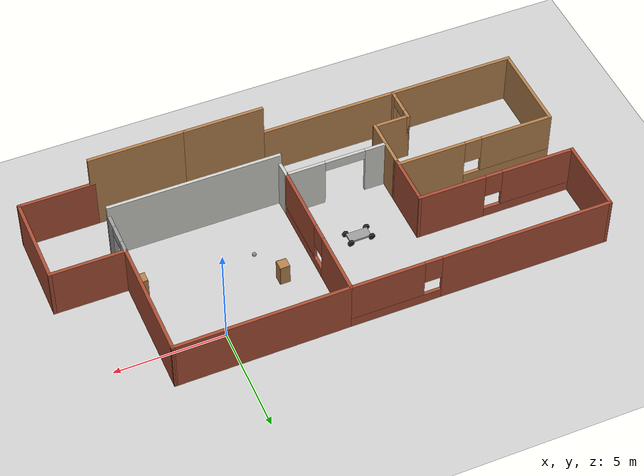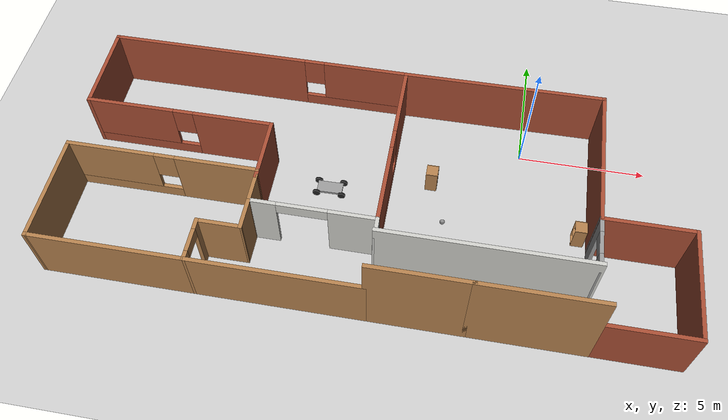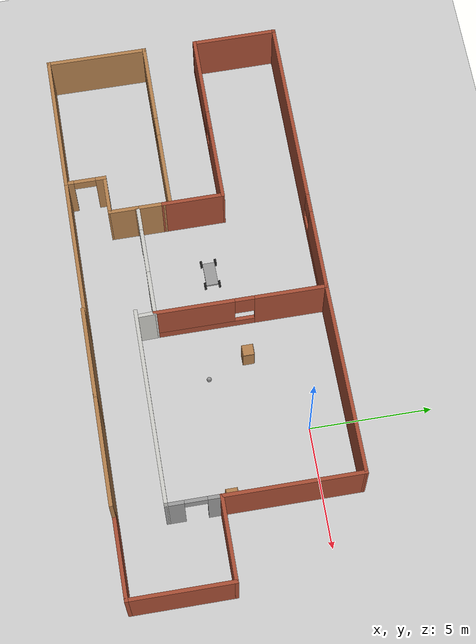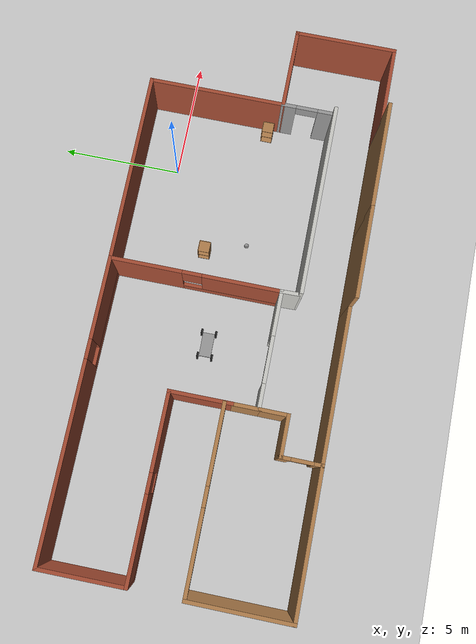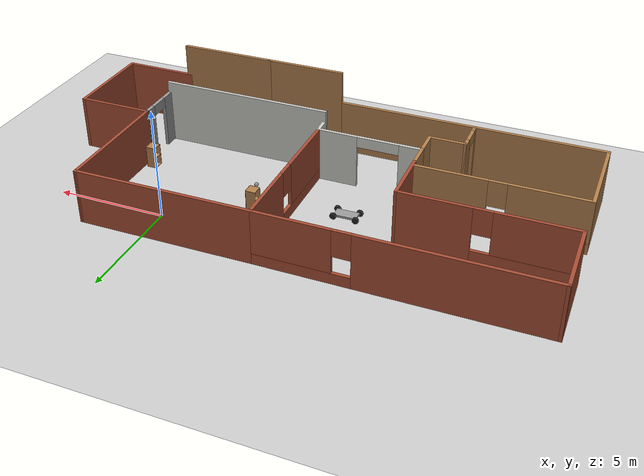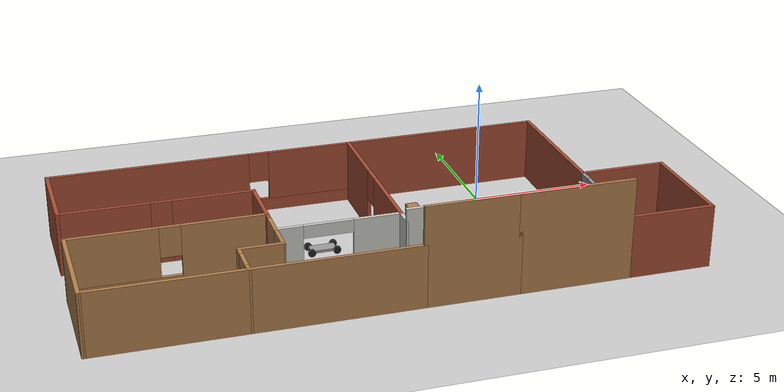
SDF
<sdf version="1.6">
 <world name="default">
  <plugin name="proj_1_plugin" filename="libproj_1_plugin.so"/>
  <light name="sun" type="directional">
   <pose>0 0 10 0 -0 0</pose>
   <diffuse>0.8 0.8 0.8 1</diffuse>
   <specular>0.2 0.2 0.2 1</specular>
   <attenuation>
    <range>1000</range>
    <constant>0.9</constant>
    <linear>0.01</linear>
    <quadratic>0.001</quadratic>
   </attenuation>
   <direction>-0.5 0.1 -0.9</direction>
   <spot><inner_angle>0</inner_angle><outer_angle>0</outer_angle><falloff>0</falloff></spot>
  </light>
  <model name="ground_plane">
   <static>1</static>
   <link name="link">
    <collision name="collision">
     <geometry><plane><normal>0 0 1</normal><size>100 100</size></plane></geometry>
     <surface>
      <contact><collide_bitmask>65535</collide_bitmask></contact>
      <friction><ode><mu>100</mu><mu2>50</mu2></ode></friction>
     </surface>
    </collision>
    <visual name="visual">
     <cast_shadows>0</cast_shadows>
     <geometry><plane><normal>0 0 1</normal><size>100 100</size></plane></geometry>
     <material>
      <script><uri>file://media/materials/scripts/gazebo.material</uri><name>Gazebo/Grey</name></script>
     </material>
    </visual>
   </link>
  </model>
  <gravity>0 0 -9.8</gravity>
  <magnetic_field>6e-06 2.3e-05 -4.2e-05</magnetic_field>
  <atmosphere type="adiabatic"/>
  <physics name="default_physics" default="0" type="ode">
   <max_step_size>0.001</max_step_size>
   <real_time_factor>1</real_time_factor>
   <real_time_update_rate>1000</real_time_update_rate>
  </physics>
  <scene><ambient>0.4 0.4 0.4 1</ambient><background>0.7 0.7 0.7 1</background><shadows>1</shadows></scene>
  <audio><device>default</device></audio>
  <spherical_coordinates>
   <surface_model>EARTH_WGS84</surface_model>
   <latitude_deg>0</latitude_deg>
   <longitude_deg>0</longitude_deg>
   <elevation>0</elevation>
   <heading_deg>0</heading_deg>
  </spherical_coordinates>
  <model name="robot_house_space">
   <pose>-5.45028 -3.2823 0 0 -0 0</pose>
   <link name="Wall_31">
    <collision name="Wall_31_Collision">
     <geometry><box><size>2.61436 0.15 2.5</size></box></geometry>
     <pose>0 0 1.25 0 -0 0</pose>
    </collision>
    <visual name="Wall_31_Visual">
     <pose>0 0 1.25 0 -0 0</pose>
     <geometry><box><size>2.61436 0.15 2.5</size></box></geometry>
     <material>
      <script><uri>file://media/materials/scripts/gazebo.material</uri><name>Gazebo/Bricks</name></script>
      <ambient>1 1 1 1</ambient>
     </material>
     <meta><layer>0</layer></meta>
    </visual>
    <pose>-4.28923 0.164965 0 0 -0 1.57401</pose>
   </link>
   <link name="Wall_32">
    <pose>-7.96819 1.397 0 0 -0 3.14159</pose>
    <visual name="Wall_32_Visual_0">
     <pose>-2.14641 0 1.25 0 -0 0</pose>
     <geometry><box><size>3.20718 0.15 2.5</size></box></geometry>
     <material>
      <script><uri>file://media/materials/scripts/gazebo.material</uri><name>Gazebo/Bricks</name></script>
      <ambient>1 1 1 1</ambient>
     </material>
     <meta><layer>0</layer></meta>
    </visual>
    <collision name="Wall_32_Collision_0">
     <geometry><box><size>3.20718 0.15 2.5</size></box></geometry>
     <pose>-2.14641 0 1.25 0 -0 0</pose>
    </collision>
    <visual name="Wall_32_Visual_1">
     <pose>1.60359 0 0.25 0 -0 0</pose>
     <geometry><box><size>4.29282 0.15 0.5</size></box></geometry>
     <material>
      <script><uri>file://media/materials/scripts/gazebo.material</uri><name>Gazebo/Bricks</name></script>
      <ambient>1 1 1 1</ambient>
     </material>
     <meta><layer>0</layer></meta>
    </visual>
    <collision name="Wall_32_Collision_1">
     <geometry><box><size>4.29282 0.15 0.5</size></box></geometry>
     <pose>1.60359 0 0.25 0 -0 0</pose>
    </collision>
    <visual name="Wall_32_Visual_2">
     <pose>2.00359 0 1.5 0 -0 0</pose>
     <geometry><box><size>3.49282 0.15 2</size></box></geometry>
     <material>
      <script><uri>file://media/materials/scripts/gazebo.material</uri><name>Gazebo/Bricks</name></script>
      <ambient>1 1 1 1</ambient>
     </material>
     <meta><layer>0</layer></meta>
    </visual>
    <collision name="Wall_32_Collision_2">
     <geometry><box><size>3.49282 0.15 2</size></box></geometry>
     <pose>2.00359 0 1.5 0 -0 0</pose>
    </collision>
    <visual name="Wall_32_Visual_3">
     <pose>-0.142822 0 1.9 0 -0 0</pose>
     <geometry><box><size>0.8 0.15 1.2</size></box></geometry>
     <material>
      <script><uri>file://media/materials/scripts/gazebo.material</uri><name>Gazebo/Bricks</name></script>
      <ambient>1 1 1 1</ambient>
     </material>
     <meta><layer>0</layer></meta>
    </visual>
    <collision name="Wall_32_Collision_3">
     <geometry><box><size>0.8 0.15 1.2</size></box></geometry>
     <pose>-0.142822 0 1.9 0 -0 0</pose>
    </collision>
   </link>
   <link name="Wall_33">
    <collision name="Wall_33_Collision">
     <geometry><box><size>3.58039 0.15 2.5</size></box></geometry>
     <pose>0 0 1.25 0 -0 0</pose>
    </collision>
    <visual name="Wall_33_Visual">
     <pose>0 0 1.25 0 -0 0</pose>
     <geometry><box><size>3.58039 0.15 2.5</size></box></geometry>
     <material>
      <script><uri>file://media/materials/scripts/gazebo.material</uri><name>Gazebo/Bricks</name></script>
      <ambient>1 1 1 1</ambient>
     </material>
     <meta><layer>0</layer></meta>
    </visual>
    <pose>-11.6508 3.11192 0 0 -0 1.57523</pose>
   </link>
   <link name="Wall_34">
    <pose>-5.6084 4.82685 0 0 -0 0</pose>
    <visual name="Wall_34_Visual_0">
     <pose>-2.11826 0 1.25 0 -0 0</pose>
     <geometry><box><size>8.01347 0.15 2.5</size></box></geometry>
     <material>
      <script><uri>file://media/materials/scripts/gazebo.material</uri><name>Gazebo/Bricks</name></script>
      <ambient>1 1 1 1</ambient>
     </material>
     <meta><layer>0</layer></meta>
    </visual>
    <collision name="Wall_34_Collision_0">
     <geometry><box><size>8.01347 0.15 2.5</size></box></geometry>
     <pose>-2.11826 0 1.25 0 -0 0</pose>
    </collision>
    <visual name="Wall_34_Visual_1">
     <pose>4.00674 0 0.25 0 -0 0</pose>
     <geometry><box><size>4.23653 0.15 0.5</size></box></geometry>
     <material>
      <script><uri>file://media/materials/scripts/gazebo.material</uri><name>Gazebo/Bricks</name></script>
      <ambient>1 1 1 1</ambient>
     </material>
     <meta><layer>0</layer></meta>
    </visual>
    <collision name="Wall_34_Collision_1">
     <geometry><box><size>4.23653 0.15 0.5</size></box></geometry>
     <pose>4.00674 0 0.25 0 -0 0</pose>
    </collision>
    <visual name="Wall_34_Visual_2">
     <pose>4.40674 0 1.5 0 -0 0</pose>
     <geometry><box><size>3.43653 0.15 2</size></box></geometry>
     <material>
      <script><uri>file://media/materials/scripts/gazebo.material</uri><name>Gazebo/Bricks</name></script>
      <ambient>1 1 1 1</ambient>
     </material>
     <meta><layer>0</layer></meta>
    </visual>
    <collision name="Wall_34_Collision_2">
     <geometry><box><size>3.43653 0.15 2</size></box></geometry>
     <pose>4.40674 0 1.5 0 -0 0</pose>
    </collision>
    <visual name="Wall_34_Visual_3">
     <pose>2.28847 0 1.9 0 -0 0</pose>
     <geometry><box><size>0.8 0.15 1.2</size></box></geometry>
     <material>
      <script><uri>file://media/materials/scripts/gazebo.material</uri><name>Gazebo/Bricks</name></script>
      <ambient>1 1 1 1</ambient>
     </material>
     <meta><layer>0</layer></meta>
    </visual>
    <collision name="Wall_34_Collision_3">
     <geometry><box><size>0.8 0.15 1.2</size></box></geometry>
     <pose>2.28847 0 1.9 0 -0 0</pose>
    </collision>
   </link>
   <link name="Wall_35">
    <pose>0.441602 1.35115 0 0 -0 -1.5708</pose>
    <visual name="Wall_35_Visual_0">
     <pose>-2.0495 0 1.25 0 -0 0</pose>
     <geometry><box><size>3.00239 0.15 2.5</size></box></geometry>
     <material>
      <script><uri>file://media/materials/scripts/gazebo.material</uri><name>Gazebo/Bricks</name></script>
      <ambient>0.760784 0.662745 0.627451 1</ambient>
     </material>
     <meta><layer>0</layer></meta>
    </visual>
    <collision name="Wall_35_Collision_0">
     <geometry><box><size>3.00239 0.15 2.5</size></box></geometry>
     <pose>-2.0495 0 1.25 0 -0 0</pose>
    </collision>
    <visual name="Wall_35_Visual_1">
     <pose>1.50119 0 0.25 0 -0 0</pose>
     <geometry><box><size>4.09901 0.15 0.5</size></box></geometry>
     <material>
      <script><uri>file://media/materials/scripts/gazebo.material</uri><name>Gazebo/Bricks</name></script>
      <ambient>0.760784 0.662745 0.627451 1</ambient>
     </material>
     <meta><layer>0</layer></meta>
    </visual>
    <collision name="Wall_35_Collision_1">
     <geometry><box><size>4.09901 0.15 0.5</size></box></geometry>
     <pose>1.50119 0 0.25 0 -0 0</pose>
    </collision>
    <visual name="Wall_35_Visual_2">
     <pose>1.90119 0 1.5 0 -0 0</pose>
     <geometry><box><size>3.29901 0.15 2</size></box></geometry>
     <material>
      <script><uri>file://media/materials/scripts/gazebo.material</uri><name>Gazebo/Bricks</name></script>
      <ambient>0.760784 0.662745 0.627451 1</ambient>
     </material>
     <meta><layer>0</layer></meta>
    </visual>
    <collision name="Wall_35_Collision_2">
     <geometry><box><size>3.29901 0.15 2</size></box></geometry>
     <pose>1.90119 0 1.5 0 -0 0</pose>
    </collision>
    <visual name="Wall_35_Visual_3">
     <pose>-0.148309 0 1.9 0 -0 0</pose>
     <geometry><box><size>0.8 0.15 1.2</size></box></geometry>
     <material>
      <script><uri>file://media/materials/scripts/gazebo.material</uri><name>Gazebo/Bricks</name></script>
      <ambient>0.760784 0.662745 0.627451 1</ambient>
     </material>
     <meta><layer>0</layer></meta>
    </visual>
    <collision name="Wall_35_Collision_3">
     <geometry><box><size>0.8 0.15 1.2</size></box></geometry>
     <pose>-0.148309 0 1.9 0 -0 0</pose>
    </collision>
   </link>
   <link name="Wall_39">
    <collision name="Wall_39_Collision">
     <geometry><box><size>1.25 0.15 2.5</size></box></geometry>
     <pose>0 0 1.25 0 -0 0</pose>
    </collision>
    <visual name="Wall_39_Visual">
     <pose>0 0 1.25 0 -0 0</pose>
     <geometry><box><size>1.25 0.15 2.5</size></box></geometry>
     <material>
      <script><uri>file://media/materials/scripts/gazebo.material</uri><name>Gazebo/Wood</name></script>
      <ambient>1 1 1 1</ambient>
     </material>
     <meta><layer>0</layer></meta>
    </visual>
    <pose>-4.28527 -1.61707 0 0 -0 -1.5708</pose>
   </link>
   <link name="Wall_41">
    <pose>-1.8584 -2.12455 0 0 -0 3.14159</pose>
    <visual name="Wall_41_Visual_0">
     <pose>-1.42904 0 1.25 0 -0 0</pose>
     <geometry><box><size>1.89192 0.15 2.5</size></box></geometry>
     <material>
      <script><uri>file://media/materials/scripts/gazebo.material</uri><name>Gazebo/CeilingTiled</name></script>
      <ambient>1 1 1 1</ambient>
     </material>
     <meta><layer>0</layer></meta>
    </visual>
    <collision name="Wall_41_Collision_0">
     <geometry><box><size>1.89192 0.15 2.5</size></box></geometry>
     <pose>-1.42904 0 1.25 0 -0 0</pose>
    </collision>
    <visual name="Wall_41_Visual_1">
     <pose>1.89596 0 1.25 0 -0 0</pose>
     <geometry><box><size>0.958083 0.15 2.5</size></box></geometry>
     <material>
      <script><uri>file://media/materials/scripts/gazebo.material</uri><name>Gazebo/CeilingTiled</name></script>
      <ambient>1 1 1 1</ambient>
     </material>
     <meta><layer>0</layer></meta>
    </visual>
    <collision name="Wall_41_Collision_1">
     <geometry><box><size>0.958083 0.15 2.5</size></box></geometry>
     <pose>1.89596 0 1.25 0 -0 0</pose>
    </collision>
    <visual name="Wall_41_Visual_2">
     <pose>0.466917 0 2.25 0 -0 0</pose>
     <geometry><box><size>1.9 0.15 0.5</size></box></geometry>
     <material>
      <script><uri>file://media/materials/scripts/gazebo.material</uri><name>Gazebo/CeilingTiled</name></script>
      <ambient>1 1 1 1</ambient>
     </material>
     <meta><layer>0</layer></meta>
    </visual>
    <collision name="Wall_41_Collision_2">
     <geometry><box><size>1.9 0.15 0.5</size></box></geometry>
     <pose>0.466917 0 2.25 0 -0 0</pose>
    </collision>
   </link>
   <link name="Wall_45">
    <collision name="Wall_45_Collision">
     <geometry><box><size>6.5 0.15 2.5</size></box></geometry>
     <pose>0 0 1.25 0 -0 0</pose>
    </collision>
    <visual name="Wall_45_Visual">
     <pose>0 0 1.25 0 -0 0</pose>
     <geometry><box><size>6.5 0.15 2.5</size></box></geometry>
     <material>
      <script><uri>file://media/materials/scripts/gazebo.material</uri><name>Gazebo/Wood</name></script>
      <ambient>1 0.764706 0.305882 1</ambient>
     </material>
     <meta><layer>0</layer></meta>
    </visual>
    <pose>-2.71107 -4.8807 0 0 -0 3.14157</pose>
   </link>
   <link name="Wall_46">
    <pose>-5.88582 -4.08064 0 0 -0 1.5708</pose>
    <visual name="Wall_46_Visual_0">
     <pose>-0.676797 0 1.25 0 -0 0</pose>
     <geometry><box><size>0.396406 0.15 2.5</size></box></geometry>
     <material>
      <script><uri>file://media/materials/scripts/gazebo.material</uri><name>Gazebo/Wood</name></script>
      <ambient>1 1 1 1</ambient>
     </material>
     <meta><layer>0</layer></meta>
    </visual>
    <collision name="Wall_46_Collision_0">
     <geometry><box><size>0.396406 0.15 2.5</size></box></geometry>
     <pose>-0.676797 0 1.25 0 -0 0</pose>
    </collision>
    <visual name="Wall_46_Visual_1">
     <pose>0.648203 0 1.25 0 -0 0</pose>
     <geometry><box><size>0.453594 0.15 2.5</size></box></geometry>
     <material>
      <script><uri>file://media/materials/scripts/gazebo.material</uri><name>Gazebo/Wood</name></script>
      <ambient>1 1 1 1</ambient>
     </material>
     <meta><layer>0</layer></meta>
    </visual>
    <collision name="Wall_46_Collision_1">
     <geometry><box><size>0.453594 0.15 2.5</size></box></geometry>
     <pose>0.648203 0 1.25 0 -0 0</pose>
    </collision>
    <visual name="Wall_46_Visual_2">
     <pose>-0.028594 0 2.25 0 -0 0</pose>
     <geometry><box><size>0.9 0.15 0.5</size></box></geometry>
     <material>
      <script><uri>file://media/materials/scripts/gazebo.material</uri><name>Gazebo/Wood</name></script>
      <ambient>1 1 1 1</ambient>
     </material>
     <meta><layer>0</layer></meta>
    </visual>
    <collision name="Wall_46_Collision_2">
     <geometry><box><size>0.9 0.15 0.5</size></box></geometry>
     <pose>-0.028594 0 2.25 0 -0 0</pose>
    </collision>
   </link>
   <link name="Wall_47">
    <collision name="Wall_47_Collision">
     <geometry><box><size>1.75 0.15 2.5</size></box></geometry>
     <pose>0 0 1.25 0 -0 0</pose>
    </collision>
    <visual name="Wall_47_Visual">
     <pose>0 0 1.25 0 -0 0</pose>
     <geometry><box><size>1.75 0.15 2.5</size></box></geometry>
     <material>
      <script><uri>file://media/materials/scripts/gazebo.material</uri><name>Gazebo/Wood</name></script>
      <ambient>1 1 1 1</ambient>
     </material>
     <meta><layer>0</layer></meta>
    </visual>
    <pose>-5.08582 -3.28064 0 0 -0 0</pose>
   </link>
   <link name="Wall_48">
    <collision name="Wall_48_Collision">
     <geometry><box><size>1.26357 0.15 2.5</size></box></geometry>
     <pose>0 0 1.25 0 -0 0</pose>
    </collision>
    <visual name="Wall_48_Visual">
     <pose>0 0 1.25 0 -0 0</pose>
     <geometry><box><size>1.26357 0.15 2.5</size></box></geometry>
     <material>
      <script><uri>file://media/materials/scripts/gazebo.material</uri><name>Gazebo/Wood</name></script>
      <ambient>1 1 1 1</ambient>
     </material>
     <meta><layer>0</layer></meta>
    </visual>
    <pose>-4.28554 -2.72385 0 0 -0 1.5703</pose>
   </link>
   <link name="Wall_50">
    <pose>-7.9864 -0.781344 0 0 -0 3.14159</pose>
    <visual name="Wall_50_Visual_0">
     <pose>-2.12429 0 1.25 0 -0 0</pose>
     <geometry><box><size>3.25142 0.15 2.5</size></box></geometry>
     <material>
      <script><uri>file://media/materials/scripts/gazebo.material</uri><name>Gazebo/Wood</name></script>
      <ambient>1 1 1 1</ambient>
     </material>
     <meta><layer>0</layer></meta>
    </visual>
    <collision name="Wall_50_Collision_0">
     <geometry><box><size>3.25142 0.15 2.5</size></box></geometry>
     <pose>-2.12429 0 1.25 0 -0 0</pose>
    </collision>
    <visual name="Wall_50_Visual_1">
     <pose>1.62571 0 0.25 0 -0 0</pose>
     <geometry><box><size>4.24858 0.15 0.5</size></box></geometry>
     <material>
      <script><uri>file://media/materials/scripts/gazebo.material</uri><name>Gazebo/Wood</name></script>
      <ambient>1 1 1 1</ambient>
     </material>
     <meta><layer>0</layer></meta>
    </visual>
    <collision name="Wall_50_Collision_1">
     <geometry><box><size>4.24858 0.15 0.5</size></box></geometry>
     <pose>1.62571 0 0.25 0 -0 0</pose>
    </collision>
    <visual name="Wall_50_Visual_2">
     <pose>2.02571 0 1.5 0 -0 0</pose>
     <geometry><box><size>3.44858 0.15 2</size></box></geometry>
     <material>
      <script><uri>file://media/materials/scripts/gazebo.material</uri><name>Gazebo/Wood</name></script>
      <ambient>1 1 1 1</ambient>
     </material>
     <meta><layer>0</layer></meta>
    </visual>
    <collision name="Wall_50_Collision_2">
     <geometry><box><size>3.44858 0.15 2</size></box></geometry>
     <pose>2.02571 0 1.5 0 -0 0</pose>
    </collision>
    <visual name="Wall_50_Visual_3">
     <pose>-0.098582 0 1.9 0 -0 0</pose>
     <geometry><box><size>0.8 0.15 1.2</size></box></geometry>
     <material>
      <script><uri>file://media/materials/scripts/gazebo.material</uri><name>Gazebo/Wood</name></script>
      <ambient>1 1 1 1</ambient>
     </material>
     <meta><layer>0</layer></meta>
    </visual>
    <collision name="Wall_50_Collision_3">
     <geometry><box><size>0.8 0.15 1.2</size></box></geometry>
     <pose>-0.098582 0 1.9 0 -0 0</pose>
    </collision>
   </link>
   <link name="Wall_51">
    <collision name="Wall_51_Collision">
     <geometry><box><size>4.25 0.15 2.5</size></box></geometry>
     <pose>0 0 1.25 0 -0 0</pose>
    </collision>
    <visual name="Wall_51_Visual">
     <pose>0 0 1.25 0 -0 0</pose>
     <geometry><box><size>4.25 0.15 2.5</size></box></geometry>
     <material>
      <script><uri>file://media/materials/scripts/gazebo.material</uri><name>Gazebo/Wood</name></script>
      <ambient>1 1 1 1</ambient>
     </material>
     <meta><layer>0</layer></meta>
    </visual>
    <pose>-11.6614 -2.83134 0 0 -0 -1.5708</pose>
   </link>
   <link name="Wall_52">
    <collision name="Wall_52_Collision">
     <geometry><box><size>5.92561 0.15 2.5</size></box></geometry>
     <pose>0 0 1.25 0 -0 0</pose>
    </collision>
    <visual name="Wall_52_Visual">
     <pose>0 0 1.25 0 -0 0</pose>
     <geometry><box><size>5.92561 0.15 2.5</size></box></geometry>
     <material>
      <script><uri>file://media/materials/scripts/gazebo.material</uri><name>Gazebo/Wood</name></script>
      <ambient>1 0.764706 0.305882 1</ambient>
     </material>
     <meta><layer>0</layer></meta>
    </visual>
    <pose>-8.77361 -4.88099 0 0 -0 0.000122</pose>
   </link>
   <link name="Wall_55">
    <collision name="Wall_55_Collision">
     <geometry><box><size>3.72131 0.15 4</size></box></geometry>
     <pose>0 0 2 0 -0 0</pose>
    </collision>
    <visual name="Wall_55_Visual">
     <pose>0 0 2 0 -0 0</pose>
     <geometry><box><size>3.72131 0.15 4</size></box></geometry>
     <material>
      <script><uri>file://media/materials/scripts/gazebo.material</uri><name>Gazebo/Wood</name></script>
      <ambient>1 1 1 1</ambient>
     </material>
     <meta><layer>0</layer></meta>
    </visual>
    <pose>2.24969 -4.88076 0 0 -0 0</pose>
   </link>
   <link name="Wall_56">
    <collision name="Wall_56_Collision">
     <geometry><box><size>4.5 0.15 4</size></box></geometry>
     <pose>0 0 2 0 -0 0</pose>
    </collision>
    <visual name="Wall_56_Visual">
     <pose>0 0 2 0 -0 0</pose>
     <geometry><box><size>4.5 0.15 4</size></box></geometry>
     <material>
      <script><uri>file://media/materials/scripts/gazebo.material</uri><name>Gazebo/Wood</name></script>
      <ambient>1 1 1 1</ambient>
     </material>
     <meta><layer>0</layer></meta>
    </visual>
    <pose>6.21069 -4.88076 0 0 -0 0</pose>
   </link>
   <link name="Wall_59">
    <collision name="Wall_59_Collision">
     <geometry><box><size>8 0.15 3</size></box></geometry>
     <pose>0 0 1.5 0 -0 0</pose>
    </collision>
    <visual name="Wall_59_Visual">
     <pose>0 0 1.5 0 -0 0</pose>
     <geometry><box><size>8 0.15 3</size></box></geometry>
     <material>
      <script><uri>file://media/materials/scripts/gazebo.material</uri><name>Gazebo/CeilingTiled</name></script>
      <ambient>1 1 1 1</ambient>
     </material>
     <meta><layer>0</layer></meta>
    </visual>
    <pose>4.38669 -2.87716 0 0 -0 0</pose>
   </link>
   <link name="Wall_61">
    <collision name="Wall_61_Collision">
     <geometry><box><size>0.90288 0.15 2.5</size></box></geometry>
     <pose>0 0 1.25 0 -0 0</pose>
    </collision>
    <visual name="Wall_61_Visual">
     <pose>0 0 1.25 0 -0 0</pose>
     <geometry><box><size>0.90288 0.15 2.5</size></box></geometry>
     <material>
      <script><uri>file://media/materials/scripts/gazebo.material</uri><name>Gazebo/CeilingTiled</name></script>
      <ambient>1 1 1 1</ambient>
     </material>
     <meta><layer>0</layer></meta>
    </visual>
    <pose>0.451646 -2.50085 0 0 -0 -1.54411</pose>
   </link>
   <link name="Wall_63">
    <pose>8.31156 -1.79816 0 0 -0 1.57092</pose>
    <visual name="Wall_63_Visual_0">
     <pose>-0.764558 0 1.25 0 -0 0</pose>
     <geometry><box><size>0.778882 0.15 2.5</size></box></geometry>
     <material>
      <script><uri>file://media/materials/scripts/gazebo.material</uri><name>Gazebo/Grey</name></script>
      <ambient>1 1 1 1</ambient>
     </material>
     <meta><layer>0</layer></meta>
    </visual>
    <collision name="Wall_63_Collision_0">
     <geometry><box><size>0.778882 0.15 2.5</size></box></geometry>
     <pose>-0.764558 0 1.25 0 -0 0</pose>
    </collision>
    <visual name="Wall_63_Visual_1">
     <pose>0.839441 0 1.25 0 -0 0</pose>
     <geometry><box><size>0.629117 0.15 2.5</size></box></geometry>
     <material>
      <script><uri>file://media/materials/scripts/gazebo.material</uri><name>Gazebo/Grey</name></script>
      <ambient>1 1 1 1</ambient>
     </material>
     <meta><layer>0</layer></meta>
    </visual>
    <collision name="Wall_63_Collision_1">
     <geometry><box><size>0.629117 0.15 2.5</size></box></geometry>
     <pose>0.839441 0 1.25 0 -0 0</pose>
    </collision>
    <visual name="Wall_63_Visual_2">
     <pose>0.074883 0 2.25 0 -0 0</pose>
     <geometry><box><size>0.9 0.15 0.5</size></box></geometry>
     <material>
      <script><uri>file://media/materials/scripts/gazebo.material</uri><name>Gazebo/Grey</name></script>
      <ambient>1 1 1 1</ambient>
     </material>
     <meta><layer>0</layer></meta>
    </visual>
    <collision name="Wall_63_Collision_2">
     <geometry><box><size>0.9 0.15 0.5</size></box></geometry>
     <pose>0.074883 0 2.25 0 -0 0</pose>
    </collision>
   </link>
   <link name="Wall_64">
    <collision name="Wall_64_Collision">
     <geometry><box><size>3.5 0.15 2.5</size></box></geometry>
     <pose>0 0 1.25 0 -0 0</pose>
    </collision>
    <visual name="Wall_64_Visual">
     <pose>0 0 1.25 0 -0 0</pose>
     <geometry><box><size>3.5 0.15 2.5</size></box></geometry>
     <material>
      <script><uri>file://media/materials/scripts/gazebo.material</uri><name>Gazebo/Bricks</name></script>
      <ambient>1 1 1 1</ambient>
     </material>
     <meta><layer>0</layer></meta>
    </visual>
    <pose>9.98643 -0.719159 0 0 -0 0</pose>
   </link>
   <link name="Wall_65">
    <collision name="Wall_65_Collision">
     <geometry><box><size>4.30761 0.15 2.5</size></box></geometry>
     <pose>0 0 1.25 0 -0 0</pose>
    </collision>
    <visual name="Wall_65_Visual">
     <pose>0 0 1.25 0 -0 0</pose>
     <geometry><box><size>4.30761 0.15 2.5</size></box></geometry>
     <material>
      <script><uri>file://media/materials/scripts/gazebo.material</uri><name>Gazebo/Bricks</name></script>
      <ambient>1 1 1 1</ambient>
     </material>
     <meta><layer>0</layer></meta>
    </visual>
    <pose>11.6614 -2.79796 0 0 -0 -1.5708</pose>
   </link>
   <link name="Wall_66">
    <collision name="Wall_66_Collision">
     <geometry><box><size>3.5 0.15 2.5</size></box></geometry>
     <pose>0 0 1.25 0 -0 0</pose>
    </collision>
    <visual name="Wall_66_Visual">
     <pose>0 0 1.25 0 -0 0</pose>
     <geometry><box><size>3.5 0.15 2.5</size></box></geometry>
     <material>
      <script><uri>file://media/materials/scripts/gazebo.material</uri><name>Gazebo/Bricks</name></script>
      <ambient>1 1 1 1</ambient>
     </material>
     <meta><layer>0</layer></meta>
    </visual>
    <pose>9.98643 -4.87677 0 0 -0 3.14159</pose>
   </link>
   <link name="Wall_67">
    <collision name="Wall_67_Collision">
     <geometry><box><size>0.15 0.15 2.5</size></box></geometry>
     <pose>0 0 1.25 0 -0 0</pose>
    </collision>
    <visual name="Wall_67_Visual">
     <pose>0 0 1.25 0 -0 0</pose>
     <geometry><box><size>0.15 0.15 2.5</size></box></geometry>
     <material>
      <script><uri>file://media/materials/scripts/gazebo.material</uri><name>Gazebo/Grey</name></script>
      <ambient>1 1 1 1</ambient>
     </material>
     <meta><layer>0</layer></meta>
    </visual>
    <pose>8.31142 -4.87677 0 0 -0 0</pose>
   </link>
   <link name="Wall_68">
    <collision name="Wall_68_Collision">
     <geometry><box><size>0.15 0.15 2.5</size></box></geometry>
     <pose>0 0 1.25 0 -0 0</pose>
    </collision>
    <visual name="Wall_68_Visual">
     <pose>0 0 1.25 0 -0 0</pose>
     <geometry><box><size>0.15 0.15 2.5</size></box></geometry>
     <material>
      <script><uri>file://media/materials/scripts/gazebo.material</uri><name>Gazebo/Grey</name></script>
      <ambient>1 1 1 1</ambient>
     </material>
     <meta><layer>0</layer></meta>
    </visual>
    <pose>8.31142 -4.87677 0 0 -0 0</pose>
   </link>
   <link name="Wall_69">
    <collision name="Wall_69_Collision">
     <geometry><box><size>0.15 0.15 2.5</size></box></geometry>
     <pose>0 0 1.25 0 -0 0</pose>
    </collision>
    <visual name="Wall_69_Visual">
     <pose>0 0 1.25 0 -0 0</pose>
     <geometry><box><size>0.15 0.15 2.5</size></box></geometry>
     <material>
      <script><uri>file://media/materials/scripts/gazebo.material</uri><name>Gazebo/Grey</name></script>
      <ambient>1 1 1 1</ambient>
     </material>
     <meta><layer>0</layer></meta>
    </visual>
    <pose>8.31142 -4.87677 0 0 -0 0</pose>
   </link>
   <link name="Wall_70">
    <collision name="Wall_70_Collision">
     <geometry><box><size>0.15 0.15 2.5</size></box></geometry>
     <pose>0 0 1.25 0 -0 0</pose>
    </collision>
    <visual name="Wall_70_Visual">
     <pose>0 0 1.25 0 -0 0</pose>
     <geometry><box><size>0.15 0.15 2.5</size></box></geometry>
     <material>
      <script><uri>file://media/materials/scripts/gazebo.material</uri><name>Gazebo/Grey</name></script>
      <ambient>1 1 1 1</ambient>
     </material>
     <meta><layer>0</layer></meta>
    </visual>
    <pose>8.31142 -4.87677 0 0 -0 0</pose>
   </link>
   <link name="Wall_73">
    <collision name="Wall_73_Collision">
     <geometry><box><size>5.75 0.15 2.5</size></box></geometry>
     <pose>0 0 1.25 0 -0 0</pose>
    </collision>
    <visual name="Wall_73_Visual">
     <pose>0 0 1.25 0 -0 0</pose>
     <geometry><box><size>5.75 0.15 2.5</size></box></geometry>
     <material>
      <script><uri>file://media/materials/scripts/gazebo.material</uri><name>Gazebo/Bricks</name></script>
      <ambient>1 1 1 1</ambient>
     </material>
     <meta><layer>0</layer></meta>
    </visual>
    <pose>8.31142 2.08084 0 0 -0 1.5708</pose>
   </link>
   <link name="Wall_74">
    <collision name="Wall_74_Collision">
     <geometry><box><size>8.02001 0.15 2.5</size></box></geometry>
     <pose>0 0 1.25 0 -0 0</pose>
    </collision>
    <visual name="Wall_74_Visual">
     <pose>0 0 1.25 0 -0 0</pose>
     <geometry><box><size>8.02001 0.15 2.5</size></box></geometry>
     <material>
      <script><uri>file://media/materials/scripts/gazebo.material</uri><name>Gazebo/Bricks</name></script>
      <ambient>1 1 1 1</ambient>
     </material>
     <meta><layer>0</layer></meta>
    </visual>
    <pose>4.37651 4.85384 0 0 -0 -3.13473</pose>
   </link>
   <static>1</static>
  </model>
  <model name="cabinet">
   <static>1</static>
   <link name="cabinet_bottom_plate">
    <inertial>
     <pose>0 0 -1 0 -0 0</pose>
     <inertia><ixx>2.05</ixx><ixy>0</ixy><ixz>0</ixz><iyy>2.05</iyy><iyz>0</iyz><izz>2.05</izz></inertia>
     <mass>25</mass>
    </inertial>
    <collision name="cabinet_bottom_plate_geom">
     <pose>0 0 0.01 0 -0 0</pose>
     <geometry><box><size>0.45 0.45 0.02</size></box></geometry>
    </collision>
    <visual name="cabinet_bottom_plate_geom_visual">
     <pose>0 0 0.01 0 -0 0</pose>
     <geometry><box><size>0.45 0.45 0.02</size></box></geometry>
     <material>
      <script><uri>file://media/materials/scripts/gazebo.material</uri><name>Gazebo/Wood</name></script>
     </material>
    </visual>
    <collision name="cabinet_bottom_plate_geom_cabinet_back_plate">
     <pose>0.235 0 0.51 0 -0 0</pose>
     <geometry><box><size>0.02 0.45 1.02</size></box></geometry>
    </collision>
    <visual name="cabinet_bottom_plate_geom_cabinet_back_plate_visual">
     <pose>0.235 0 0.51 0 -0 0</pose>
     <geometry><box><size>0.02 0.45 1.02</size></box></geometry>
     <material>
      <script><uri>file://media/materials/scripts/gazebo.material</uri><name>Gazebo/Wood</name></script>
     </material>
    </visual>
    <collision name="cabinet_bottom_plate_geom_cabinet_left_plate">
     <pose>0 0.235 0.51 0 -0 0</pose>
     <geometry><box><size>0.45 0.02 1.02</size></box></geometry>
    </collision>
    <visual name="cabinet_bottom_plate_geom_cabinet_left_plate_visual">
     <pose>0 0.235 0.51 0 -0 0</pose>
     <geometry><box><size>0.45 0.02 1.02</size></box></geometry>
     <material>
      <script><uri>file://media/materials/scripts/gazebo.material</uri><name>Gazebo/Wood</name></script>
     </material>
    </visual>
    <collision name="cabinet_bottom_plate_geom_cabinet_middle_plate">
     <pose>0 0 0.51 0 -0 0</pose>
     <geometry><box><size>0.45 0.45 0.02</size></box></geometry>
    </collision>
    <visual name="cabinet_bottom_plate_geom_cabinet_middle_plate_visual">
     <pose>0 0 0.51 0 -0 0</pose>
     <geometry><box><size>0.45 0.45 0.02</size></box></geometry>
     <material>
      <script><uri>file://media/materials/scripts/gazebo.material</uri><name>Gazebo/Wood</name></script>
     </material>
    </visual>
    <collision name="cabinet_bottom_plate_geom_cabinet_right_plate">
     <pose>0 -0.235 0.51 0 -0 0</pose>
     <geometry><box><size>0.45 0.02 1.02</size></box></geometry>
    </collision>
    <visual name="cabinet_bottom_plate_geom_cabinet_right_plate_visual">
     <pose>0 -0.235 0.51 0 -0 0</pose>
     <geometry><box><size>0.45 0.02 1.02</size></box></geometry>
     <material>
      <script><uri>file://media/materials/scripts/gazebo.material</uri><name>Gazebo/Wood</name></script>
     </material>
    </visual>
    <collision name="cabinet_bottom_plate_geom_cabinet_top_plate">
     <pose>0 0 1.01 0 -0 0</pose>
     <geometry><box><size>0.45 0.45 0.02</size></box></geometry>
    </collision>
    <visual name="cabinet_bottom_plate_geom_cabinet_top_plate_visual">
     <pose>0 0 1.01 0 -0 0</pose>
     <geometry><box><size>0.45 0.45 0.02</size></box></geometry>
     <material>
      <script><uri>file://media/materials/scripts/gazebo.material</uri><name>Gazebo/Wood</name></script>
     </material>
    </visual>
   </link>
   <pose>2.4285 -3.54215 0 0 -0 0</pose>
  </model>
  <model name="cart_rigid_suspension">
   <link name="chassis">
    <pose>0 0 0.15 0 -0 0</pose>
    <inertial>
     <pose>0.1 0 0 0 -0 0</pose>
     <mass>10</mass>
     <inertia>
      <ixx>0.216667</ixx>
      <iyy>0.841667</iyy>
      <izz>1.04167</izz>
      <ixy>0</ixy>
      <ixz>0</ixz>
      <iyz>0</iyz>
     </inertia>
    </inertial>
    <collision name="collision"><geometry><box><size>1 0.5 0.1</size></box></geometry></collision>
    <visual name="visual">
     <geometry><box><size>1 0.5 0.1</size></box></geometry>
     <material>
      <script><uri>file://media/materials/scripts/gazebo.material</uri><name>Gazebo/Grey</name></script>
     </material>
    </visual>
   </link>
   <link name="wheel_front_left">
    <pose>0.5 0.298 0.15 -1.5708 0 0</pose>
    <inertial>
     <mass>0.5</mass>
     <inertia>
      <ixx>0.00307917</ixx>
      <iyy>0.00307917</iyy>
      <izz>0.005625</izz>
      <ixy>0</ixy>
      <ixz>0</ixz>
      <iyz>0</iyz>
     </inertia>
    </inertial>
    <collision name="collision">
     <geometry><cylinder><radius>0.15</radius><length>0.08</length></cylinder></geometry>
    </collision>
    <visual name="visual">
     <geometry><cylinder><radius>0.15</radius><length>0.08</length></cylinder></geometry>
     <material>
      <script><uri>file://media/materials/scripts/gazebo.material</uri><name>Gazebo/Black</name></script>
     </material>
    </visual>
   </link>
   <joint name="wheel_front_left_spin" type="revolute">
    <parent>chassis</parent>
    <child>wheel_front_left</child>
    <axis>
     <xyz>0 0 1</xyz>
     <use_parent_model_frame>0</use_parent_model_frame>
     <limit><lower>-1e+16</lower><upper>1e+16</upper></limit>
     <dynamics><spring_reference>0</spring_reference><spring_stiffness>0</spring_stiffness></dynamics>
    </axis>
   </joint>
   <link name="wheel_front_right">
    <pose>0.5 -0.298 0.15 -1.5708 0 0</pose>
    <inertial>
     <mass>0.5</mass>
     <inertia>
      <ixx>0.00307917</ixx>
      <iyy>0.00307917</iyy>
      <izz>0.005625</izz>
      <ixy>0</ixy>
      <ixz>0</ixz>
      <iyz>0</iyz>
     </inertia>
    </inertial>
    <collision name="collision">
     <geometry><cylinder><radius>0.15</radius><length>0.08</length></cylinder></geometry>
    </collision>
    <visual name="visual">
     <geometry><cylinder><radius>0.15</radius><length>0.08</length></cylinder></geometry>
     <material>
      <script><uri>file://media/materials/scripts/gazebo.material</uri><name>Gazebo/Black</name></script>
     </material>
    </visual>
   </link>
   <joint name="wheel_front_right_spin" type="revolute">
    <parent>chassis</parent>
    <child>wheel_front_right</child>
    <axis>
     <xyz>0 0 1</xyz>
     <use_parent_model_frame>0</use_parent_model_frame>
     <limit><lower>-1e+16</lower><upper>1e+16</upper></limit>
     <dynamics><spring_reference>0</spring_reference><spring_stiffness>0</spring_stiffness></dynamics>
    </axis>
   </joint>
   <link name="wheel_rear_left">
    <pose>-0.5 0.298 0.15 -1.5708 0 0</pose>
    <inertial>
     <mass>0.5</mass>
     <inertia>
      <ixx>0.00307917</ixx>
      <iyy>0.00307917</iyy>
      <izz>0.005625</izz>
      <ixy>0</ixy>
      <ixz>0</ixz>
      <iyz>0</iyz>
     </inertia>
    </inertial>
    <collision name="collision">
     <geometry><cylinder><radius>0.15</radius><length>0.08</length></cylinder></geometry>
    </collision>
    <visual name="visual">
     <geometry><cylinder><radius>0.15</radius><length>0.08</length></cylinder></geometry>
     <material>
      <script><uri>file://media/materials/scripts/gazebo.material</uri><name>Gazebo/Black</name></script>
     </material>
    </visual>
   </link>
   <joint name="wheel_rear_left_spin" type="revolute">
    <parent>chassis</parent>
    <child>wheel_rear_left</child>
    <axis>
     <xyz>0 0 1</xyz>
     <use_parent_model_frame>0</use_parent_model_frame>
     <limit><lower>-1e+16</lower><upper>1e+16</upper></limit>
     <dynamics><spring_reference>0</spring_reference><spring_stiffness>0</spring_stiffness></dynamics>
    </axis>
   </joint>
   <link name="wheel_rear_right">
    <pose>-0.5 -0.298 0.15 -1.5708 0 0</pose>
    <inertial>
     <mass>0.5</mass>
     <inertia>
      <ixx>0.00307917</ixx>
      <iyy>0.00307917</iyy>
      <izz>0.005625</izz>
      <ixy>0</ixy>
      <ixz>0</ixz>
      <iyz>0</iyz>
     </inertia>
    </inertial>
    <collision name="collision">
     <geometry><cylinder><radius>0.15</radius><length>0.08</length></cylinder></geometry>
    </collision>
    <visual name="visual">
     <geometry><cylinder><radius>0.15</radius><length>0.08</length></cylinder></geometry>
     <material>
      <script><uri>file://media/materials/scripts/gazebo.material</uri><name>Gazebo/Black</name></script>
     </material>
    </visual>
   </link>
   <joint name="wheel_rear_right_spin" type="revolute">
    <parent>chassis</parent>
    <child>wheel_rear_right</child>
    <axis>
     <xyz>0 0 1</xyz>
     <use_parent_model_frame>0</use_parent_model_frame>
     <limit><lower>-1e+16</lower><upper>1e+16</upper></limit>
     <dynamics><spring_reference>0</spring_reference><spring_stiffness>0</spring_stiffness></dynamics>
    </axis>
   </joint>
   <pose>-7.3275 -2.83828 -7e-06 -0 -1.4e-05 0.016234</pose>
  </model>
  <model name="my_ball">
   <link name="link_0">
    <inertial>
     <mass>1</mass>
     <inertia><ixx>0.1</ixx><ixy>0</ixy><ixz>0</ixz><iyy>0.1</iyy><iyz>0</iyz><izz>0.1</izz></inertia>
    </inertial>
    <visual name="visual">
     <geometry><sphere><radius>0.1</radius></sphere></geometry>
     <material>
      <lighting>1</lighting>
      <script><uri>file://media/materials/scripts/gazebo.material</uri><name>Gazebo/Grey</name></script>
      <shader type="pixel"><normal_map>__default__</normal_map></shader>
      <ambient>1 1 1 1</ambient>
      <diffuse>1 1 1 1</diffuse>
      <specular>1 1 1 1</specular>
      <emissive>1 1 1 1</emissive>
     </material>
    </visual>
    <collision name="collision">
     <geometry><sphere><radius>0.1</radius></sphere></geometry>
     <surface>
      <friction>
       <ode><mu>1</mu><mu2>1</mu2><fdir1>0 0 0</fdir1><slip1>0</slip1><slip2>0</slip2></ode>
       <torsional>
        <coefficient>1</coefficient>
        <patch_radius>0</patch_radius>
        <surface_radius>0</surface_radius>
        <use_patch_radius>1</use_patch_radius>
        <ode><slip>0</slip></ode>
       </torsional>
      </friction>
      <bounce><restitution_coefficient>0</restitution_coefficient><threshold>1e+06</threshold></bounce>
      <contact>
       <collide_without_contact>0</collide_without_contact>
       <collide_without_contact_bitmask>1</collide_without_contact_bitmask>
       <collide_bitmask>1</collide_bitmask>
       <ode>
        <soft_cfm>0</soft_cfm>
        <soft_erp>0.2</soft_erp>
        <kp>1e+13</kp>
        <kd>1</kd>
        <max_vel>0.01</max_vel>
        <min_depth>0</min_depth>
       </ode>
       <bullet>
        <split_impulse>1</split_impulse>
        <split_impulse_penetration_threshold>-0.01</split_impulse_penetration_threshold>
        <soft_cfm>0</soft_cfm>
        <soft_erp>0.2</soft_erp>
        <kp>1e+13</kp>
        <kd>1</kd>
       </bullet>
      </contact>
     </surface>
    </collision>
   </link>
   <static>0</static>
   <pose>-2.73525 -3.63449 0.1 0 -0 0</pose>
  </model>
  <model name="cabinet_clone">
   <static>1</static>
   <link name="cabinet_bottom_plate">
    <inertial>
     <pose>0 0 -1 0 -0 0</pose>
     <inertia><ixx>2.05</ixx><ixy>0</ixy><ixz>0</ixz><iyy>2.05</iyy><iyz>0</iyz><izz>2.05</izz></inertia>
     <mass>25</mass>
    </inertial>
    <collision name="cabinet_bottom_plate_geom">
     <pose>0 0 0.01 0 -0 0</pose>
     <geometry><box><size>0.45 0.45 0.02</size></box></geometry>
    </collision>
    <visual name="cabinet_bottom_plate_geom_visual">
     <pose>0 0 0.01 0 -0 0</pose>
     <geometry><box><size>0.45 0.45 0.02</size></box></geometry>
     <material>
      <script><uri>file://media/materials/scripts/gazebo.material</uri><name>Gazebo/Wood</name></script>
     </material>
    </visual>
    <collision name="cabinet_bottom_plate_geom_cabinet_back_plate">
     <pose>0.235 0 0.51 0 -0 0</pose>
     <geometry><box><size>0.02 0.45 1.02</size></box></geometry>
    </collision>
    <visual name="cabinet_bottom_plate_geom_cabinet_back_plate_visual">
     <pose>0.235 0 0.51 0 -0 0</pose>
     <geometry><box><size>0.02 0.45 1.02</size></box></geometry>
     <material>
      <script><uri>file://media/materials/scripts/gazebo.material</uri><name>Gazebo/Wood</name></script>
     </material>
    </visual>
    <collision name="cabinet_bottom_plate_geom_cabinet_left_plate">
     <pose>0 0.235 0.51 0 -0 0</pose>
     <geometry><box><size>0.45 0.02 1.02</size></box></geometry>
    </collision>
    <visual name="cabinet_bottom_plate_geom_cabinet_left_plate_visual">
     <pose>0 0.235 0.51 0 -0 0</pose>
     <geometry><box><size>0.45 0.02 1.02</size></box></geometry>
     <material>
      <script><uri>file://media/materials/scripts/gazebo.material</uri><name>Gazebo/Wood</name></script>
     </material>
    </visual>
    <collision name="cabinet_bottom_plate_geom_cabinet_middle_plate">
     <pose>0 0 0.51 0 -0 0</pose>
     <geometry><box><size>0.45 0.45 0.02</size></box></geometry>
    </collision>
    <visual name="cabinet_bottom_plate_geom_cabinet_middle_plate_visual">
     <pose>0 0 0.51 0 -0 0</pose>
     <geometry><box><size>0.45 0.45 0.02</size></box></geometry>
     <material>
      <script><uri>file://media/materials/scripts/gazebo.material</uri><name>Gazebo/Wood</name></script>
     </material>
    </visual>
    <collision name="cabinet_bottom_plate_geom_cabinet_right_plate">
     <pose>0 -0.235 0.51 0 -0 0</pose>
     <geometry><box><size>0.45 0.02 1.02</size></box></geometry>
    </collision>
    <visual name="cabinet_bottom_plate_geom_cabinet_right_plate_visual">
     <pose>0 -0.235 0.51 0 -0 0</pose>
     <geometry><box><size>0.45 0.02 1.02</size></box></geometry>
     <material>
      <script><uri>file://media/materials/scripts/gazebo.material</uri><name>Gazebo/Wood</name></script>
     </material>
    </visual>
    <collision name="cabinet_bottom_plate_geom_cabinet_top_plate">
     <pose>0 0 1.01 0 -0 0</pose>
     <geometry><box><size>0.45 0.45 0.02</size></box></geometry>
    </collision>
    <visual name="cabinet_bottom_plate_geom_cabinet_top_plate_visual">
     <pose>0 0 1.01 0 -0 0</pose>
     <geometry><box><size>0.45 0.45 0.02</size></box></geometry>
     <material>
      <script><uri>file://media/materials/scripts/gazebo.material</uri><name>Gazebo/Wood</name></script>
     </material>
    </visual>
   </link>
   <pose>-3.39608 -1.92848 0 0 -0 0</pose>
  </model>
 </world>
</sdf>
